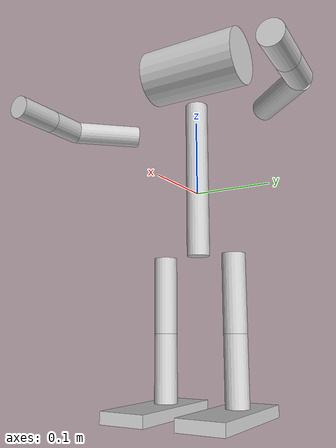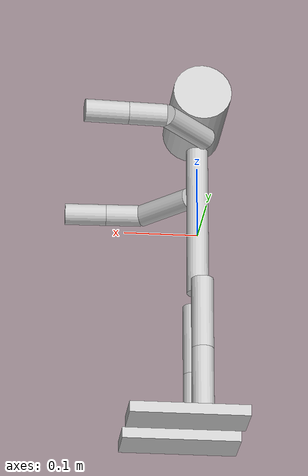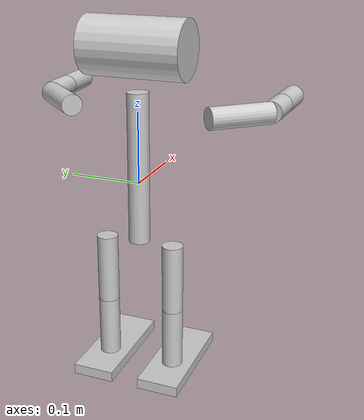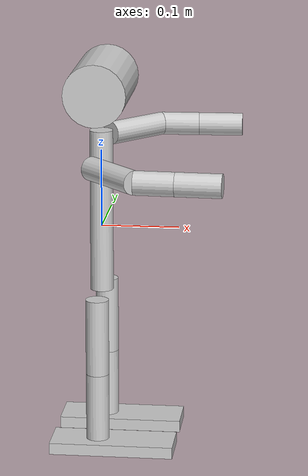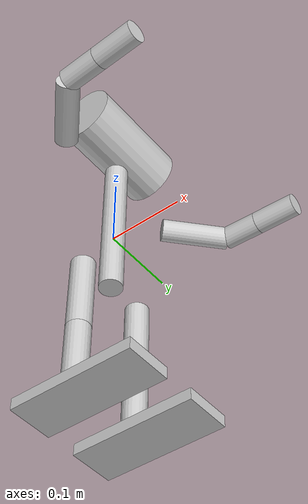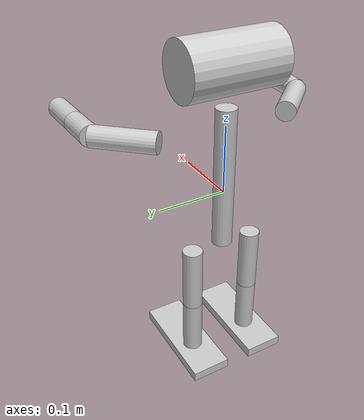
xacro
<?xml version="1.0" ?>
<robot name="NaoH25V32" xmlns:xacro="http://www.ros.org/wiki/xacro">
	<xacro:include filename="nao_visual_collisions.xacro"/>
	<xacro:include filename="nao_head.xacro"/>
	<xacro:include filename="nao_legs.xacro"/>
	<xacro:include filename="nao_torso.xacro"/>
	<xacro:include filename="nao_arms.xacro"/>
	<xacro:include filename="nao_sensors.xacro"/>
	<xacro:include filename="nao_fingers.xacro"/>
	<xacro:include filename="naoGazebo.xacro"/>
	<xacro:include filename="naoTransmission.xacro"/>
</robot>

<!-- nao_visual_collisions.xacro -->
<robot xmlns:xacro="http://www.ros.org/wiki/xacro">
	<xacro:property name="PI_2" value="1.57079632679"/>
	<xacro:property name="meshes_installed" value="false"/>
	<xacro:macro name="insert_visu_RFinger23_link">
		<xacro:unless value="${meshes_installed}"/>
		<xacro:if value="${meshes_installed}">
			<visual>
				<geometry>
					<mesh filename="package://nao_meshes/meshes/V32/RFinger23.dae" scale="0.1 0.1 0.1"/>
				</geometry>
				<origin rpy="0 0 0" xyz="0 0 0"/>
			</visual>
			<collision>
				<geometry>
					<mesh filename="package://nao_meshes/meshes/V32/RFinger23_0.10.stl" scale="0.1 0.1 0.1"/>
				</geometry>
				<origin rpy="0 0 0" xyz="0 0 0"/>
			</collision>
		</xacro:if>
	</xacro:macro>
	<xacro:macro name="insert_visu_LThigh">
		<xacro:unless value="${meshes_installed}">
			<visual>
				<geometry>
					<cylinder length="0.1" radius="0.015"/>
				</geometry>
				<origin rpy="0 0 0" xyz="0 0 -0.05"/>
				<material name="LightGrey"/>
			</visual>
			<collision>
				<geometry>
					<cylinder length="0.1" radius="0.015"/>
				</geometry>
				<origin rpy="0 0 0" xyz="0 0 -0.05"/>
			</collision>
		</xacro:unless>
		<xacro:if value="${meshes_installed}">
			<visual>
				<geometry>
					<mesh filename="package://nao_meshes/meshes/V32/LHipPitch.dae" scale="0.1 0.1 0.1"/>
				</geometry>
				<origin rpy="0 0 0" xyz="0 0 0"/>
			</visual>
			<collision>
				<geometry>
					<mesh filename="package://nao_meshes/meshes/V32/LHipPitch_0.10.stl" scale="0.1 0.1 0.1"/>
				</geometry>
				<origin rpy="0 0 0" xyz="0 0 0"/>
			</collision>
		</xacro:if>
	</xacro:macro>
	<xacro:macro name="insert_visu_RFinger13_link">
		<xacro:unless value="${meshes_installed}"/>
		<xacro:if value="${meshes_installed}">
			<visual>
				<geometry>
					<mesh filename="package://nao_meshes/meshes/V32/RFinger13.dae" scale="0.1 0.1 0.1"/>
				</geometry>
				<origin rpy="0 0 0" xyz="0 0 0"/>
			</visual>
			<collision>
				<geometry>
					<mesh filename="package://nao_meshes/meshes/V32/RFinger13_0.10.stl" scale="0.1 0.1 0.1"/>
				</geometry>
				<origin rpy="0 0 0" xyz="0 0 0"/>
			</collision>
		</xacro:if>
	</xacro:macro>
	<xacro:macro name="insert_visu_RThigh">
		<xacro:unless value="${meshes_installed}">
			<visual>
				<geometry>
					<cylinder length="0.1" radius="0.015"/>
				</geometry>
				<origin rpy="0 0 0" xyz="0 0 -0.05"/>
				<material name="LightGrey"/>
			</visual>
			<collision>
				<geometry>
					<cylinder length="0.1" radius="0.015"/>
				</geometry>
				<origin rpy="0 0 0" xyz="0 0 -0.05"/>
			</collision>
		</xacro:unless>
		<xacro:if value="${meshes_installed}">
			<visual>
				<geometry>
					<mesh filename="package://nao_meshes/meshes/V32/RHipPitch.dae" scale="0.1 0.1 0.1"/>
				</geometry>
				<origin rpy="0 0 0" xyz="0 0 0"/>
			</visual>
			<collision>
				<geometry>
					<mesh filename="package://nao_meshes/meshes/V32/RHipPitch_0.10.stl" scale="0.1 0.1 0.1"/>
				</geometry>
				<origin rpy="0 0 0" xyz="0 0 0"/>
			</collision>
		</xacro:if>
	</xacro:macro>
	<xacro:macro name="insert_visu_RFinger12_link">
		<xacro:unless value="${meshes_installed}"/>
		<xacro:if value="${meshes_installed}">
			<visual>
				<geometry>
					<mesh filename="package://nao_meshes/meshes/V32/RFinger12.dae" scale="0.1 0.1 0.1"/>
				</geometry>
				<origin rpy="0 0 0" xyz="0 0 0"/>
			</visual>
			<collision>
				<geometry>
					<mesh filename="package://nao_meshes/meshes/V32/RFinger12_0.10.stl" scale="0.1 0.1 0.1"/>
				</geometry>
				<origin rpy="0 0 0" xyz="0 0 0"/>
			</collision>
		</xacro:if>
	</xacro:macro>
	<xacro:macro name="insert_visu_LFinger21_link">
		<xacro:unless value="${meshes_installed}"/>
		<xacro:if value="${meshes_installed}">
			<visual>
				<geometry>
					<mesh filename="package://nao_meshes/meshes/V32/LFinger21.dae" scale="0.1 0.1 0.1"/>
				</geometry>
				<origin rpy="0 0 0" xyz="0 0 0"/>
			</visual>
			<collision>
				<geometry>
					<mesh filename="package://nao_meshes/meshes/V32/LFinger21_0.10.stl" scale="0.1 0.1 0.1"/>
				</geometry>
				<origin rpy="0 0 0" xyz="0 0 0"/>
			</collision>
		</xacro:if>
	</xacro:macro>
	<xacro:macro name="insert_visu_LFinger13_link">
		<xacro:unless value="${meshes_installed}"/>
		<xacro:if value="${meshes_installed}">
			<visual>
				<geometry>
					<mesh filename="package://nao_meshes/meshes/V32/LFinger13.dae" scale="0.1 0.1 0.1"/>
				</geometry>
				<origin rpy="0 0 0" xyz="0 0 0"/>
			</visual>
			<collision>
				<geometry>
					<mesh filename="package://nao_meshes/meshes/V32/LFinger13_0.10.stl" scale="0.1 0.1 0.1"/>
				</geometry>
				<origin rpy="0 0 0" xyz="0 0 0"/>
			</collision>
		</xacro:if>
	</xacro:macro>
	<xacro:macro name="insert_visu_LThumb1_link">
		<xacro:unless value="${meshes_installed}"/>
		<xacro:if value="${meshes_installed}">
			<visual>
				<geometry>
					<mesh filename="package://nao_meshes/meshes/V32/LThumb1.dae" scale="0.1 0.1 0.1"/>
				</geometry>
				<origin rpy="0 0 0" xyz="0 0 0"/>
			</visual>
			<collision>
				<geometry>
					<mesh filename="package://nao_meshes/meshes/V32/LThumb1_0.10.stl" scale="0.1 0.1 0.1"/>
				</geometry>
				<origin rpy="0 0 0" xyz="0 0 0"/>
			</collision>
		</xacro:if>
	</xacro:macro>
	<xacro:macro name="insert_visu_LFinger11_link">
		<xacro:unless value="${meshes_installed}"/>
		<xacro:if value="${meshes_installed}">
			<visual>
				<geometry>
					<mesh filename="package://nao_meshes/meshes/V32/LFinger11.dae" scale="0.1 0.1 0.1"/>
				</geometry>
				<origin rpy="0 0 0" xyz="0 0 0"/>
			</visual>
			<collision>
				<geometry>
					<mesh filename="package://nao_meshes/meshes/V32/LFinger11_0.10.stl" scale="0.1 0.1 0.1"/>
				</geometry>
				<origin rpy="0 0 0" xyz="0 0 0"/>
			</collision>
		</xacro:if>
	</xacro:macro>
	<xacro:macro name="insert_visu_RFinger22_link">
		<xacro:unless value="${meshes_installed}"/>
		<xacro:if value="${meshes_installed}">
			<visual>
				<geometry>
					<mesh filename="package://nao_meshes/meshes/V32/RFinger22.dae" scale="0.1 0.1 0.1"/>
				</geometry>
				<origin rpy="0 0 0" xyz="0 0 0"/>
			</visual>
			<collision>
				<geometry>
					<mesh filename="package://nao_meshes/meshes/V32/RFinger22_0.10.stl" scale="0.1 0.1 0.1"/>
				</geometry>
				<origin rpy="0 0 0" xyz="0 0 0"/>
			</collision>
		</xacro:if>
	</xacro:macro>
	<xacro:macro name="insert_visu_Head">
		<xacro:unless value="${meshes_installed}">
			<visual>
				<geometry>
					<cylinder length="0.14" radius="0.04"/>
				</geometry>
				<origin rpy="1.57079632679 0 0" xyz="0 0 0.058"/>
				<material name="LightGrey"/>
			</visual>
			<collision>
				<geometry>
					<cylinder length="0.14" radius="0.04"/>
				</geometry>
				<origin rpy="1.57079632679 0 0" xyz="0 0 0.058"/>
			</collision>
		</xacro:unless>
		<xacro:if value="${meshes_installed}">
			<visual>
				<geometry>
					<mesh filename="package://nao_meshes/meshes/V32/HeadPitch.dae" scale="0.1 0.1 0.1"/>
				</geometry>
				<origin rpy="0 0 0" xyz="0 0 0"/>
			</visual>
			<collision>
				<geometry>
					<mesh filename="package://nao_meshes/meshes/V32/HeadPitch_0.10.stl" scale="0.1 0.1 0.1"/>
				</geometry>
				<origin rpy="0 0 0" xyz="0 0 0"/>
			</collision>
		</xacro:if>
	</xacro:macro>
	<xacro:macro name="insert_visu_LFinger22_link">
		<xacro:unless value="${meshes_installed}"/>
		<xacro:if value="${meshes_installed}">
			<visual>
				<geometry>
					<mesh filename="package://nao_meshes/meshes/V32/LFinger22.dae" scale="0.1 0.1 0.1"/>
				</geometry>
				<origin rpy="0 0 0" xyz="0 0 0"/>
			</visual>
			<collision>
				<geometry>
					<mesh filename="package://nao_meshes/meshes/V32/LFinger22_0.10.stl" scale="0.1 0.1 0.1"/>
				</geometry>
				<origin rpy="0 0 0" xyz="0 0 0"/>
			</collision>
		</xacro:if>
	</xacro:macro>
	<xacro:macro name="insert_visu_RFinger21_link">
		<xacro:unless value="${meshes_installed}"/>
		<xacro:if value="${meshes_installed}">
			<visual>
				<geometry>
					<mesh filename="package://nao_meshes/meshes/V32/RFinger21.dae" scale="0.1 0.1 0.1"/>
				</geometry>
				<origin rpy="0 0 0" xyz="0 0 0"/>
			</visual>
			<collision>
				<geometry>
					<mesh filename="package://nao_meshes/meshes/V32/RFinger21_0.10.stl" scale="0.1 0.1 0.1"/>
				</geometry>
				<origin rpy="0 0 0" xyz="0 0 0"/>
			</collision>
		</xacro:if>
	</xacro:macro>
	<xacro:macro name="insert_visu_LBicep">
		<xacro:unless value="${meshes_installed}">
			<visual>
				<geometry>
					<cylinder length="0.09" radius="0.015"/>
				</geometry>
				<origin rpy="1.57079632679 0 1.57079632679" xyz="0.045 0 0"/>
				<material name="LightGrey"/>
			</visual>
			<collision>
				<geometry>
					<cylinder length="0.09" radius="0.015"/>
				</geometry>
				<origin rpy="1.57079632679 0 1.57079632679" xyz="0.045 0 0"/>
			</collision>
		</xacro:unless>
		<xacro:if value="${meshes_installed}">
			<visual>
				<geometry>
					<mesh filename="package://nao_meshes/meshes/V32/LShoulderRoll.dae" scale="0.1 0.1 0.1"/>
				</geometry>
				<origin rpy="0 0 0" xyz="0 0 0"/>
			</visual>
			<collision>
				<geometry>
					<mesh filename="package://nao_meshes/meshes/V32/LShoulderRoll_0.10.stl" scale="0.1 0.1 0.1"/>
				</geometry>
				<origin rpy="0 0 0" xyz="0 0 0"/>
			</collision>
		</xacro:if>
	</xacro:macro>
	<xacro:macro name="insert_visu_RThumb1_link">
		<xacro:unless value="${meshes_installed}"/>
		<xacro:if value="${meshes_installed}">
			<visual>
				<geometry>
					<mesh filename="package://nao_meshes/meshes/V32/RThumb1.dae" scale="0.1 0.1 0.1"/>
				</geometry>
				<origin rpy="0 0 0" xyz="0 0 0"/>
			</visual>
			<collision>
				<geometry>
					<mesh filename="package://nao_meshes/meshes/V32/RThumb1_0.10.stl" scale="0.1 0.1 0.1"/>
				</geometry>
				<origin rpy="0 0 0" xyz="0 0 0"/>
			</collision>
		</xacro:if>
	</xacro:macro>
	<xacro:macro name="insert_visu_RThumb2_link">
		<xacro:unless value="${meshes_installed}"/>
		<xacro:if value="${meshes_installed}">
			<visual>
				<geometry>
					<mesh filename="package://nao_meshes/meshes/V32/RThumb2.dae" scale="0.1 0.1 0.1"/>
				</geometry>
				<origin rpy="0 0 0" xyz="0 0 0"/>
			</visual>
			<collision>
				<geometry>
					<mesh filename="package://nao_meshes/meshes/V32/RThumb2_0.10.stl" scale="0.1 0.1 0.1"/>
				</geometry>
				<origin rpy="0 0 0" xyz="0 0 0"/>
			</collision>
		</xacro:if>
	</xacro:macro>
	<xacro:macro name="insert_visu_r_wrist">
		<xacro:unless value="${meshes_installed}">
			<visual>
				<geometry>
					<cylinder length="0.058" radius="0.015"/>
				</geometry>
				<origin rpy="1.57079632679 0 1.57079632679" xyz="0.029 0 0"/>
				<material name="LightGrey"/>
			</visual>
			<collision>
				<geometry>
					<cylinder length="0.058" radius="0.015"/>
				</geometry>
				<origin rpy="1.57079632679 0 1.57079632679" xyz="0.029 0 0"/>
			</collision>
		</xacro:unless>
		<xacro:if value="${meshes_installed}">
			<visual>
				<geometry>
					<mesh filename="package://nao_meshes/meshes/V32/RWristYaw.dae" scale="0.1 0.1 0.1"/>
				</geometry>
				<origin rpy="0 0 0" xyz="0 0 0"/>
			</visual>
			<collision>
				<geometry>
					<mesh filename="package://nao_meshes/meshes/V32/RWristYaw_0.10.stl" scale="0.1 0.1 0.1"/>
				</geometry>
				<origin rpy="0 0 0" xyz="0 0 0"/>
			</collision>
		</xacro:if>
	</xacro:macro>
	<xacro:macro name="insert_visu_LForeArm">
		<xacro:unless value="${meshes_installed}">
			<visual>
				<geometry>
					<cylinder length="0.05065" radius="0.015"/>
				</geometry>
				<origin rpy="1.57079632679 0 1.57079632679" xyz="0.025325 0 0"/>
				<material name="LightGrey"/>
			</visual>
			<collision>
				<geometry>
					<cylinder length="0.05065" radius="0.015"/>
				</geometry>
				<origin rpy="1.57079632679 0 1.57079632679" xyz="0.025325 0 0"/>
			</collision>
		</xacro:unless>
		<xacro:if value="${meshes_installed}">
			<visual>
				<geometry>
					<mesh filename="package://nao_meshes/meshes/V32/LElbowRoll.dae" scale="0.1 0.1 0.1"/>
				</geometry>
				<origin rpy="0 0 0" xyz="0 0 0"/>
			</visual>
			<collision>
				<geometry>
					<mesh filename="package://nao_meshes/meshes/V32/LElbowRoll_0.10.stl" scale="0.1 0.1 0.1"/>
				</geometry>
				<origin rpy="0 0 0" xyz="0 0 0"/>
			</collision>
		</xacro:if>
	</xacro:macro>
	<xacro:macro name="insert_visu_RHip">
		<xacro:unless value="${meshes_installed}"/>
		<xacro:if value="${meshes_installed}">
			<visual>
				<geometry>
					<mesh filename="package://nao_meshes/meshes/V32/RHipRoll.dae" scale="0.1 0.1 0.1"/>
				</geometry>
				<origin rpy="0 0 0" xyz="0 0 0"/>
			</visual>
			<collision>
				<geometry>
					<mesh filename="package://nao_meshes/meshes/V32/RHipRoll_0.10.stl" scale="0.1 0.1 0.1"/>
				</geometry>
				<origin rpy="0 0 0" xyz="0 0 0"/>
			</collision>
		</xacro:if>
	</xacro:macro>
	<xacro:macro name="insert_visu_LThumb2_link">
		<xacro:unless value="${meshes_installed}"/>
		<xacro:if value="${meshes_installed}">
			<visual>
				<geometry>
					<mesh filename="package://nao_meshes/meshes/V32/LThumb2.dae" scale="0.1 0.1 0.1"/>
				</geometry>
				<origin rpy="0 0 0" xyz="0 0 0"/>
			</visual>
			<collision>
				<geometry>
					<mesh filename="package://nao_meshes/meshes/V32/LThumb2_0.10.stl" scale="0.1 0.1 0.1"/>
				</geometry>
				<origin rpy="0 0 0" xyz="0 0 0"/>
			</collision>
		</xacro:if>
	</xacro:macro>
	<xacro:macro name="insert_visu_LFinger12_link">
		<xacro:unless value="${meshes_installed}"/>
		<xacro:if value="${meshes_installed}">
			<visual>
				<geometry>
					<mesh filename="package://nao_meshes/meshes/V32/LFinger12.dae" scale="0.1 0.1 0.1"/>
				</geometry>
				<origin rpy="0 0 0" xyz="0 0 0"/>
			</visual>
			<collision>
				<geometry>
					<mesh filename="package://nao_meshes/meshes/V32/LFinger12_0.10.stl" scale="0.1 0.1 0.1"/>
				</geometry>
				<origin rpy="0 0 0" xyz="0 0 0"/>
			</collision>
		</xacro:if>
	</xacro:macro>
	<xacro:macro name="insert_visu_RTibia">
		<xacro:unless value="${meshes_installed}">
			<visual>
				<geometry>
					<cylinder length="0.1" radius="0.015"/>
				</geometry>
				<origin rpy="0 0 0" xyz="0 0 -0.05"/>
				<material name="LightGrey"/>
			</visual>
			<collision>
				<geometry>
					<cylinder length="0.1" radius="0.015"/>
				</geometry>
				<origin rpy="0 0 0" xyz="0 0 -0.05"/>
			</collision>
		</xacro:unless>
		<xacro:if value="${meshes_installed}">
			<visual>
				<geometry>
					<mesh filename="package://nao_meshes/meshes/V32/RKneePitch.dae" scale="0.1 0.1 0.1"/>
				</geometry>
				<origin rpy="0 0 0" xyz="0 0 0"/>
			</visual>
			<collision>
				<geometry>
					<mesh filename="package://nao_meshes/meshes/V32/RKneePitch_0.10.stl" scale="0.1 0.1 0.1"/>
				</geometry>
				<origin rpy="0 0 0" xyz="0 0 0"/>
			</collision>
		</xacro:if>
	</xacro:macro>
	<xacro:macro name="insert_visu_RShoulder">
		<xacro:unless value="${meshes_installed}"/>
		<xacro:if value="${meshes_installed}">
			<visual>
				<geometry>
					<mesh filename="package://nao_meshes/meshes/V32/RShoulderPitch.dae" scale="0.1 0.1 0.1"/>
				</geometry>
				<origin rpy="0 0 0" xyz="0 0 0"/>
			</visual>
			<collision>
				<geometry>
					<mesh filename="package://nao_meshes/meshes/V32/RShoulderPitch_0.10.stl" scale="0.1 0.1 0.1"/>
				</geometry>
				<origin rpy="0 0 0" xyz="0 0 0"/>
			</collision>
		</xacro:if>
	</xacro:macro>
	<xacro:macro name="insert_visu_LHip">
		<xacro:unless value="${meshes_installed}"/>
		<xacro:if value="${meshes_installed}">
			<visual>
				<geometry>
					<mesh filename="package://nao_meshes/meshes/V32/LHipRoll.dae" scale="0.1 0.1 0.1"/>
				</geometry>
				<origin rpy="0 0 0" xyz="0 0 0"/>
			</visual>
			<collision>
				<geometry>
					<mesh filename="package://nao_meshes/meshes/V32/LHipRoll_0.10.stl" scale="0.1 0.1 0.1"/>
				</geometry>
				<origin rpy="0 0 0" xyz="0 0 0"/>
			</collision>
		</xacro:if>
	</xacro:macro>
	<xacro:macro name="insert_visu_l_wrist">
		<xacro:unless value="${meshes_installed}">
			<visual>
				<geometry>
					<cylinder length="0.058" radius="0.015"/>
				</geometry>
				<origin rpy="1.57079632679 0 1.57079632679" xyz="0.029 0 0"/>
				<material name="LightGrey"/>
			</visual>
			<collision>
				<geometry>
					<cylinder length="0.058" radius="0.015"/>
				</geometry>
				<origin rpy="1.57079632679 0 1.57079632679" xyz="0.029 0 0"/>
			</collision>
		</xacro:unless>
		<xacro:if value="${meshes_installed}">
			<visual>
				<geometry>
					<mesh filename="package://nao_meshes/meshes/V32/LWristYaw.dae" scale="0.1 0.1 0.1"/>
				</geometry>
				<origin rpy="0 0 0" xyz="0 0 0"/>
			</visual>
			<collision>
				<geometry>
					<mesh filename="package://nao_meshes/meshes/V32/LWristYaw_0.10.stl" scale="0.1 0.1 0.1"/>
				</geometry>
				<origin rpy="0 0 0" xyz="0 0 0"/>
			</collision>
		</xacro:if>
	</xacro:macro>
	<xacro:macro name="insert_visu_RBicep">
		<xacro:unless value="${meshes_installed}">
			<visual>
				<geometry>
					<cylinder length="0.09" radius="0.015"/>
				</geometry>
				<origin rpy="1.57079632679 0 1.57079632679" xyz="0.045 0 0"/>
				<material name="LightGrey"/>
			</visual>
			<collision>
				<geometry>
					<cylinder length="0.09" radius="0.015"/>
				</geometry>
				<origin rpy="1.57079632679 0 1.57079632679" xyz="0.045 0 0"/>
			</collision>
		</xacro:unless>
		<xacro:if value="${meshes_installed}">
			<visual>
				<geometry>
					<mesh filename="package://nao_meshes/meshes/V32/RShoulderRoll.dae" scale="0.1 0.1 0.1"/>
				</geometry>
				<origin rpy="0 0 0" xyz="0 0 0"/>
			</visual>
			<collision>
				<geometry>
					<mesh filename="package://nao_meshes/meshes/V32/RShoulderRoll_0.10.stl" scale="0.1 0.1 0.1"/>
				</geometry>
				<origin rpy="0 0 0" xyz="0 0 0"/>
			</collision>
		</xacro:if>
	</xacro:macro>
	<xacro:macro name="insert_visu_RFinger11_link">
		<xacro:unless value="${meshes_installed}"/>
		<xacro:if value="${meshes_installed}">
			<visual>
				<geometry>
					<mesh filename="package://nao_meshes/meshes/V32/RFinger11.dae" scale="0.1 0.1 0.1"/>
				</geometry>
				<origin rpy="0 0 0" xyz="0 0 0"/>
			</visual>
			<collision>
				<geometry>
					<mesh filename="package://nao_meshes/meshes/V32/RFinger11_0.10.stl" scale="0.1 0.1 0.1"/>
				</geometry>
				<origin rpy="0 0 0" xyz="0 0 0"/>
			</collision>
		</xacro:if>
	</xacro:macro>
	<xacro:macro name="insert_visu_LFinger23_link">
		<xacro:unless value="${meshes_installed}"/>
		<xacro:if value="${meshes_installed}">
			<visual>
				<geometry>
					<mesh filename="package://nao_meshes/meshes/V32/LFinger23.dae" scale="0.1 0.1 0.1"/>
				</geometry>
				<origin rpy="0 0 0" xyz="0 0 0"/>
			</visual>
			<collision>
				<geometry>
					<mesh filename="package://nao_meshes/meshes/V32/LFinger23_0.10.stl" scale="0.1 0.1 0.1"/>
				</geometry>
				<origin rpy="0 0 0" xyz="0 0 0"/>
			</collision>
		</xacro:if>
	</xacro:macro>
	<xacro:macro name="insert_visu_LTibia">
		<xacro:unless value="${meshes_installed}">
			<visual>
				<geometry>
					<cylinder length="0.1" radius="0.015"/>
				</geometry>
				<origin rpy="0 0 0" xyz="0 0 -0.05"/>
				<material name="LightGrey"/>
			</visual>
			<collision>
				<geometry>
					<cylinder length="0.1" radius="0.015"/>
				</geometry>
				<origin rpy="0 0 0" xyz="0 0 -0.05"/>
			</collision>
		</xacro:unless>
		<xacro:if value="${meshes_installed}">
			<visual>
				<geometry>
					<mesh filename="package://nao_meshes/meshes/V32/LKneePitch.dae" scale="0.1 0.1 0.1"/>
				</geometry>
				<origin rpy="0 0 0" xyz="0 0 0"/>
			</visual>
			<collision>
				<geometry>
					<mesh filename="package://nao_meshes/meshes/V32/LKneePitch_0.10.stl" scale="0.1 0.1 0.1"/>
				</geometry>
				<origin rpy="0 0 0" xyz="0 0 0"/>
			</collision>
		</xacro:if>
	</xacro:macro>
	<xacro:macro name="insert_visu_Neck">
		<xacro:unless value="${meshes_installed}"/>
		<xacro:if value="${meshes_installed}">
			<visual>
				<geometry>
					<mesh filename="package://nao_meshes/meshes/V32/HeadYaw.dae" scale="0.1 0.1 0.1"/>
				</geometry>
				<origin rpy="0 0 0" xyz="0 0 0"/>
			</visual>
			<collision>
				<geometry>
					<mesh filename="package://nao_meshes/meshes/V32/HeadYaw_0.10.stl" scale="0.1 0.1 0.1"/>
				</geometry>
				<origin rpy="0 0 0" xyz="0 0 0"/>
			</collision>
		</xacro:if>
	</xacro:macro>
	<xacro:macro name="insert_visu_LAnklePitch">
		<xacro:unless value="${meshes_installed}"/>
		<xacro:if value="${meshes_installed}">
			<visual>
				<geometry>
					<mesh filename="package://nao_meshes/meshes/V32/LAnklePitch.dae" scale="0.1 0.1 0.1"/>
				</geometry>
				<origin rpy="0 0 0" xyz="0 0 0"/>
			</visual>
			<collision>
				<geometry>
					<mesh filename="package://nao_meshes/meshes/V32/LAnklePitch_0.10.stl" scale="0.1 0.1 0.1"/>
				</geometry>
				<origin rpy="0 0 0" xyz="0 0 0"/>
			</collision>
		</xacro:if>
	</xacro:macro>
	<xacro:macro name="insert_visu_RPelvis">
		<xacro:unless value="${meshes_installed}"/>
		<xacro:if value="${meshes_installed}">
			<visual>
				<geometry>
					<mesh filename="package://nao_meshes/meshes/V32/RHipYawPitch.dae" scale="0.1 0.1 0.1"/>
				</geometry>
				<origin rpy="0 0 0" xyz="0 0 0"/>
			</visual>
			<collision>
				<geometry>
					<mesh filename="package://nao_meshes/meshes/V32/RHipYawPitch_0.10.stl" scale="0.1 0.1 0.1"/>
				</geometry>
				<origin rpy="0 0 0" xyz="0 0 0"/>
			</collision>
		</xacro:if>
	</xacro:macro>
	<xacro:macro name="insert_visu_RAnklePitch">
		<xacro:unless value="${meshes_installed}"/>
		<xacro:if value="${meshes_installed}">
			<visual>
				<geometry>
					<mesh filename="package://nao_meshes/meshes/V32/RAnklePitch.dae" scale="0.1 0.1 0.1"/>
				</geometry>
				<origin rpy="0 0 0" xyz="0 0 0"/>
			</visual>
			<collision>
				<geometry>
					<mesh filename="package://nao_meshes/meshes/V32/RAnklePitch_0.10.stl" scale="0.1 0.1 0.1"/>
				</geometry>
				<origin rpy="0 0 0" xyz="0 0 0"/>
			</collision>
		</xacro:if>
	</xacro:macro>
	<xacro:macro name="insert_visu_torso">
		<xacro:unless value="${meshes_installed}">
			<visual>
				<geometry>
					<cylinder length="0.2115" radius="0.015"/>
				</geometry>
				<origin rpy="0 0 0" xyz="0 0 0.02075"/>
				<material name="LightGrey"/>
			</visual>
			<collision>
				<geometry>
					<cylinder length="0.2115" radius="0.015"/>
				</geometry>
				<origin rpy="0 0 0" xyz="0 0 0.02075"/>
			</collision>
		</xacro:unless>
		<xacro:if value="${meshes_installed}">
			<visual>
				<geometry>
					<mesh filename="package://nao_meshes/meshes/V32/Torso.dae" scale="0.1 0.1 0.1"/>
				</geometry>
				<origin rpy="0 0 0" xyz="0 0 0"/>
			</visual>
			<collision>
				<geometry>
					<mesh filename="package://nao_meshes/meshes/V32/Torso_0.10.stl" scale="0.1 0.1 0.1"/>
				</geometry>
				<origin rpy="0 0 0" xyz="0 0 0"/>
			</collision>
		</xacro:if>
	</xacro:macro>
	<xacro:macro name="insert_visu_r_ankle">
		<xacro:unless value="${meshes_installed}">
			<visual>
				<geometry>
					<box size="0.16 0.06 0.015"/>
				</geometry>
				<origin rpy="0 0 0" xyz="0.02 0 0.0075"/>
				<material name="LightGrey"/>
			</visual>
			<collision>
				<geometry>
					<box size="0.16 0.06 0.015"/>
				</geometry>
				<origin rpy="0 0 0" xyz="0.02 0 0.0075"/>
			</collision>
		</xacro:unless>
		<xacro:if value="${meshes_installed}">
			<visual>
				<geometry>
					<mesh filename="package://nao_meshes/meshes/V32/RAnkleRoll.dae" scale="0.1 0.1 0.1"/>
				</geometry>
				<origin rpy="0 0 0" xyz="0 0 0"/>
			</visual>
			<collision>
				<geometry>
					<mesh filename="package://nao_meshes/meshes/V32/RAnkleRoll_0.10.stl" scale="0.1 0.1 0.1"/>
				</geometry>
				<origin rpy="0 0 0" xyz="0 0 0"/>
			</collision>
		</xacro:if>
	</xacro:macro>
	<xacro:macro name="insert_visu_l_ankle">
		<xacro:unless value="${meshes_installed}">
			<visual>
				<geometry>
					<box size="0.16 0.06 0.015"/>
				</geometry>
				<origin rpy="0 0 0" xyz="0.02 0 0.0075"/>
				<material name="LightGrey"/>
			</visual>
			<collision>
				<geometry>
					<box size="0.16 0.06 0.015"/>
				</geometry>
				<origin rpy="0 0 0" xyz="0.02 0 0.0075"/>
			</collision>
		</xacro:unless>
		<xacro:if value="${meshes_installed}">
			<visual>
				<geometry>
					<mesh filename="package://nao_meshes/meshes/V32/LAnkleRoll.dae" scale="0.1 0.1 0.1"/>
				</geometry>
				<origin rpy="0 0 0" xyz="0 0 0"/>
			</visual>
			<collision>
				<geometry>
					<mesh filename="package://nao_meshes/meshes/V32/LAnkleRoll_0.10.stl" scale="0.1 0.1 0.1"/>
				</geometry>
				<origin rpy="0 0 0" xyz="0 0 0"/>
			</collision>
		</xacro:if>
	</xacro:macro>
	<xacro:macro name="insert_visu_RForeArm">
		<xacro:unless value="${meshes_installed}">
			<visual>
				<geometry>
					<cylinder length="0.05065" radius="0.015"/>
				</geometry>
				<origin rpy="1.57079632679 0 1.57079632679" xyz="0.025325 0 0"/>
				<material name="LightGrey"/>
			</visual>
			<collision>
				<geometry>
					<cylinder length="0.05065" radius="0.015"/>
				</geometry>
				<origin rpy="1.57079632679 0 1.57079632679" xyz="0.025325 0 0"/>
			</collision>
		</xacro:unless>
		<xacro:if value="${meshes_installed}">
			<visual>
				<geometry>
					<mesh filename="package://nao_meshes/meshes/V32/RElbowRoll.dae" scale="0.1 0.1 0.1"/>
				</geometry>
				<origin rpy="0 0 0" xyz="0 0 0"/>
			</visual>
			<collision>
				<geometry>
					<mesh filename="package://nao_meshes/meshes/V32/RElbowRoll_0.10.stl" scale="0.1 0.1 0.1"/>
				</geometry>
				<origin rpy="0 0 0" xyz="0 0 0"/>
			</collision>
		</xacro:if>
	</xacro:macro>
	<xacro:macro name="insert_visu_LShoulder">
		<xacro:unless value="${meshes_installed}"/>
		<xacro:if value="${meshes_installed}">
			<visual>
				<geometry>
					<mesh filename="package://nao_meshes/meshes/V32/LShoulderPitch.dae" scale="0.1 0.1 0.1"/>
				</geometry>
				<origin rpy="0 0 0" xyz="0 0 0"/>
			</visual>
			<collision>
				<geometry>
					<mesh filename="package://nao_meshes/meshes/V32/LShoulderPitch_0.10.stl" scale="0.1 0.1 0.1"/>
				</geometry>
				<origin rpy="0 0 0" xyz="0 0 0"/>
			</collision>
		</xacro:if>
	</xacro:macro>
	<xacro:macro name="insert_visu_LPelvis">
		<xacro:unless value="${meshes_installed}"/>
		<xacro:if value="${meshes_installed}">
			<visual>
				<geometry>
					<mesh filename="package://nao_meshes/meshes/V32/LHipYawPitch.dae" scale="0.1 0.1 0.1"/>
				</geometry>
				<origin rpy="0 0 0" xyz="0 0 0"/>
			</visual>
			<collision>
				<geometry>
					<mesh filename="package://nao_meshes/meshes/V32/LHipYawPitch_0.10.stl" scale="0.1 0.1 0.1"/>
				</geometry>
				<origin rpy="0 0 0" xyz="0 0 0"/>
			</collision>
		</xacro:if>
	</xacro:macro>
</robot>

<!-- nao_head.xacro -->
<robot xmlns:xacro="http://www.ros.org/wiki/xacro">
	<joint name="HeadYaw" type="revolute">
		<parent link="torso"/>
		<child link="Neck"/>
		<origin rpy="0 0 0" xyz="0 0 0.1265"/>
		<axis xyz="0 0 1.0"/>
		<limit effort="1.547" lower="-2.08567" upper="2.08567" velocity="8.26797"/>
	</joint>
	<link name="Neck">
		<inertial>
			<mass value="0.05959"/>
			<inertia ixx="2.27831e-05" ixy="0" ixz="-2.84825e-08" iyy="2.37937e-05" iyz="-1.0416e-07" izz="5.49457e-06"/>
			<origin rpy="0 0 0" xyz="-3e-05 0 -0.02573"/>
		</inertial>
		<xacro:insert_visu_Neck/>
	</link>
	<joint name="HeadPitch" type="revolute">
		<parent link="Neck"/>
		<child link="Head"/>
		<origin rpy="0 0 0" xyz="0 0 0"/>
		<axis xyz="0 1.0 0"/>
		<limit effort="1.532" lower="-0.671952" upper="0.514872" velocity="7.19407"/>
	</joint>
	<link name="Head">
		<inertial>
			<mass value="0.47672"/>
			<inertia ixx="0.0036122" ixy="1.42859e-05" ixz="0.000289597" iyy="0.00342929" iyz="-2.22459e-05" izz="0.00156014"/>
			<origin rpy="0 0 0" xyz="0.00383 0 0.05156"/>
		</inertial>
		<xacro:insert_visu_Head/>
	</link>
	<joint name="gaze_joint" type="fixed">
		<parent link="Head"/>
		<child link="gaze"/>
		<origin rpy="0 0 0" xyz="0.05871 0 0.06364"/>
	</joint>
	<link name="gaze"/>
</robot>

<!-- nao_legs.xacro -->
<robot xmlns:xacro="http://www.ros.org/wiki/xacro">
	<joint name="LHipYawPitch" type="revolute">
		<parent link="torso"/>
		<child link="LPelvis"/>
		<origin rpy="0 0 0" xyz="0 0.05 -0.085"/>
		<axis xyz="0 0.707106 -0.707106"/>
		<limit effort="3.348" lower="-1.14529" upper="0.740718" velocity="4.16174"/>
	</joint>
	<link name="LPelvis">
		<inertial>
			<mass value="0.07244"/>
			<inertia ixx="2.74339e-05" ixy="1.27703e-06" ixz="-1.83038e-06" iyy="4.99292e-05" iyz="4.57891e-06" izz="5.3498e-05"/>
			<origin rpy="0 0 0" xyz="-0.00717 -0.01187 0.02705"/>
		</inertial>
		<xacro:insert_visu_LPelvis/>
	</link>
	<joint name="LHipRoll" type="revolute">
		<parent link="LPelvis"/>
		<child link="LHip"/>
		<origin rpy="0 0 0" xyz="0 0 0"/>
		<axis xyz="1.0 0 0"/>
		<limit effort="3.348" lower="-0.379435" upper="0.79046" velocity="4.16174"/>
	</joint>
	<link name="LHip">
		<inertial>
			<mass value="0.1353"/>
			<inertia ixx="2.4849e-05" ixy="-5.97198e-07" ixz="5.28803e-06" iyy="6.16256e-05" iyz="-1.85886e-07" izz="0.000255291"/>
			<origin rpy="0 0 0" xyz="-0.01649 0.00029 -0.00475"/>
		</inertial>
		<xacro:insert_visu_LHip/>
	</link>
	<joint name="LHipPitch" type="revolute">
		<parent link="LHip"/>
		<child link="LThigh"/>
		<origin rpy="0 0 0" xyz="0 0 0"/>
		<axis xyz="0 1.0 0"/>
		<limit effort="3.023" lower="-1.53589" upper="0.48398" velocity="6.40239"/>
	</joint>
	<link name="LThigh">
		<inertial>
			<mass value="0.39798"/>
			<inertia ixx="0.000509482" ixy="1.48043e-06" ixz="5.4425e-05" iyy="0.000469814" iyz="-1.13419e-05" izz="0.000302638"/>
			<origin rpy="0 0 0" xyz="0.00131 0.00201 -0.05386"/>
		</inertial>
		<xacro:insert_visu_LThigh/>
	</link>
	<joint name="LKneePitch" type="revolute">
		<parent link="LThigh"/>
		<child link="LTibia"/>
		<origin rpy="0 0 0" xyz="0 0 -0.1"/>
		<axis xyz="0 1.0 0"/>
		<limit effort="3.023" lower="-0.0923279" upper="2.11255" velocity="6.40239"/>
	</joint>
	<link name="LTibia">
		<inertial>
			<mass value="0.29714"/>
			<inertia ixx="0.000468213" ixy="3.24443e-06" ixz="-2.82799e-05" iyy="0.000411872" iyz="5.21684e-06" izz="0.000185588"/>
			<origin rpy="0 0 0" xyz="0.00471 0.0021 -0.04891"/>
		</inertial>
		<xacro:insert_visu_LTibia/>
	</link>
	<joint name="LAnklePitch" type="revolute">
		<parent link="LTibia"/>
		<child link="LAnklePitch"/>
		<origin rpy="0 0 0" xyz="0 0 -0.1029"/>
		<axis xyz="0 1.0 0"/>
		<limit effort="3.023" lower="-1.18944" upper="0.922581" velocity="6.40239"/>
	</joint>
	<link name="LAnklePitch">
		<inertial>
			<mass value="0.13892"/>
			<inertia ixx="3.31602e-05" ixy="5.81459e-09" ixz="3.47177e-06" iyy="6.6181e-05" iyz="2.54907e-07" izz="5.32289e-05"/>
			<origin rpy="0 0 0" xyz="0.00142 0.00028 0.00638"/>
		</inertial>
		<xacro:insert_visu_LAnklePitch/>
	</link>
	<joint name="LAnkleRoll" type="revolute">
		<parent link="LAnklePitch"/>
		<child link="l_ankle"/>
		<origin rpy="0 0 0" xyz="0 0 0"/>
		<axis xyz="1.0 0 0"/>
		<limit effort="3.348" lower="-0.397761" upper="0.768992" velocity="4.16174"/>
	</joint>
	<link name="l_ankle">
		<inertial>
			<mass value="0.16304"/>
			<inertia ixx="9.80337e-05" ixy="7.46444e-06" ixz="7.11645e-06" iyy="0.000374354" iyz="1.43763e-06" izz="0.000423717"/>
			<origin rpy="0 0 0" xyz="0.02489 0.0033 -0.03208"/>
		</inertial>
		<xacro:insert_visu_l_ankle/>
	</link>
	<joint name="LLeg_effector_fixedjoint" type="fixed">
		<parent link="l_ankle"/>
		<child link="l_sole"/>
		<origin rpy="0 0 0" xyz="0 0 -0.04511"/>
		<axis xyz="0 0 0"/>
	</joint>
	<link name="l_sole"/>
	<joint name="RHipYawPitch" type="revolute">
		<parent link="torso"/>
		<child link="RPelvis"/>
		<origin rpy="0 0 0" xyz="0 -0.05 -0.085"/>
		<axis xyz="0 0.707106 0.707106"/>
		<limit effort="3.348" lower="-1.14529" upper="0.740718" velocity="4.16174"/>
		<mimic joint="LHipYawPitch" multiplier="1.0" offset="0"/>
	</joint>
	<link name="RPelvis">
		<inertial>
			<mass value="0.07244"/>
			<inertia ixx="2.74339e-05" ixy="-1.27703e-06" ixz="-1.83038e-06" iyy="4.99292e-05" iyz="-4.57891e-06" izz="5.3498e-05"/>
			<origin rpy="0 0 0" xyz="-0.00717 0.01187 0.02705"/>
		</inertial>
		<xacro:insert_visu_RPelvis/>
	</link>
	<joint name="RHipRoll" type="revolute">
		<parent link="RPelvis"/>
		<child link="RHip"/>
		<origin rpy="0 0 0" xyz="0 0 0"/>
		<axis xyz="1.0 0 0"/>
		<limit effort="3.348" lower="-0.79046" upper="0.379435" velocity="4.16174"/>
	</joint>
	<link name="RHip">
		<inertial>
			<mass value="0.1353"/>
			<inertia ixx="2.4849e-05" ixy="5.97198e-07" ixz="5.28803e-06" iyy="6.16256e-05" iyz="1.85886e-07" izz="0.000255291"/>
			<origin rpy="0 0 0" xyz="-0.01649 -0.00029 -0.00475"/>
		</inertial>
		<xacro:insert_visu_RHip/>
	</link>
	<joint name="RHipPitch" type="revolute">
		<parent link="RHip"/>
		<child link="RThigh"/>
		<origin rpy="0 0 0" xyz="0 0 0"/>
		<axis xyz="0 1.0 0"/>
		<limit effort="3.0226" lower="-1.53589" upper="0.48398" velocity="6.40239"/>
	</joint>
	<link name="RThigh">
		<inertial>
			<mass value="0.39798"/>
			<inertia ixx="0.000509482" ixy="-1.48043e-06" ixz="5.4425e-05" iyy="0.000469814" iyz="1.13419e-05" izz="0.000302638"/>
			<origin rpy="0 0 0" xyz="0.00131 -0.00201 -0.05386"/>
		</inertial>
		<xacro:insert_visu_RThigh/>
	</link>
	<joint name="RKneePitch" type="revolute">
		<parent link="RThigh"/>
		<child link="RTibia"/>
		<origin rpy="0 0 0" xyz="0 0 -0.1"/>
		<axis xyz="0 1.0 0"/>
		<limit effort="3.0226" lower="-0.0923279" upper="2.11255" velocity="6.40239"/>
	</joint>
	<link name="RTibia">
		<inertial>
			<mass value="0.29714"/>
			<inertia ixx="0.000468213" ixy="-3.24443e-06" ixz="-2.82799e-05" iyy="0.000411872" iyz="-5.21684e-06" izz="0.000185588"/>
			<origin rpy="0 0 0" xyz="0.00471 -0.0021 -0.04891"/>
		</inertial>
		<xacro:insert_visu_RTibia/>
	</link>
	<joint name="RAnklePitch" type="revolute">
		<parent link="RTibia"/>
		<child link="RAnklePitch"/>
		<origin rpy="0 0 0" xyz="0 0 -0.1029"/>
		<axis xyz="0 1.0 0"/>
		<limit effort="3.0226" lower="-1.1863" upper="0.932006" velocity="6.40239"/>
	</joint>
	<link name="RAnklePitch">
		<inertial>
			<mass value="0.13892"/>
			<inertia ixx="3.31602e-05" ixy="-5.81459e-09" ixz="3.47177e-06" iyy="6.6181e-05" iyz="-2.54907e-07" izz="5.32289e-05"/>
			<origin rpy="0 0 0" xyz="0.00142 -0.00028 0.00638"/>
		</inertial>
		<xacro:insert_visu_RAnklePitch/>
	</link>
	<joint name="RAnkleRoll" type="revolute">
		<parent link="RAnklePitch"/>
		<child link="r_ankle"/>
		<origin rpy="0 0 0" xyz="0 0 0"/>
		<axis xyz="1.0 0 0"/>
		<limit effort="3.348" lower="-0.768992" upper="0.397761" velocity="4.16174"/>
	</joint>
	<link name="r_ankle">
		<inertial>
			<mass value="0.16304"/>
			<inertia ixx="9.80337e-05" ixy="-7.46444e-06" ixz="-0.000116453" iyy="0.000374354" iyz="-1.43763e-06" izz="0.000423717"/>
			<origin rpy="0 0 0" xyz="0.02489 -0.0033 -0.03208"/>
		</inertial>
		<xacro:insert_visu_r_ankle/>
	</link>
	<joint name="RLeg_effector_fixedjoint" type="fixed">
		<parent link="r_ankle"/>
		<child link="r_sole"/>
		<origin rpy="0 0 0" xyz="0 0 -0.04511"/>
		<axis xyz="0 0 0"/>
	</joint>
	<link name="r_sole"/>
</robot>

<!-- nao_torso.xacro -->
<robot xmlns:xacro="http://www.ros.org/wiki/xacro">
	<link name="base_link"/>
	<joint name="base_link_fixedjoint" type="fixed">
		<parent link="base_link"/>
		<child link="torso"/>
		<origin rpy="0 0 0" xyz="0 0 0"/>
		<axis xyz="0 0 0"/>
	</joint>
	<link name="torso">
		<inertial>
			<mass value="1.02628"/>
			<inertia ixx="0.00304582" ixy="1.42859e-05" ixz="-1.27716e-05" iyy="0.00284625" iyz="-2.22459e-05" izz="0.00154349"/>
			<origin rpy="0 0 0" xyz="-0.0048 0 0.04227"/>
		</inertial>
		<xacro:insert_visu_torso/>
	</link>
</robot>

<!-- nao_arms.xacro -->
<robot xmlns:xacro="http://www.ros.org/wiki/xacro">
	<joint name="LShoulderPitch" type="revolute">
		<parent link="torso"/>
		<child link="LShoulder"/>
		<origin rpy="0 0 0" xyz="0 0.098 0.1"/>
		<axis xyz="0 1.0 0"/>
		<limit effort="1.329" lower="-2.08567" upper="2.08567" velocity="8.26797"/>
	</joint>
	<link name="LShoulder">
		<inertial>
			<mass value="0.06984"/>
			<inertia ixx="2.71212e-05" ixy="1.092e-06" ixz="-6.48989e-09" iyy="1.38254e-05" iyz="-3.76769e-07" izz="2.90286e-05"/>
			<origin rpy="0 0 0" xyz="-0.00178 -0.02507 0.00019"/>
		</inertial>
		<xacro:insert_visu_LShoulder/>
	</link>
	<joint name="LShoulderRoll" type="revolute">
		<parent link="LShoulder"/>
		<child link="LBicep"/>
		<origin rpy="0 0 0" xyz="0 0 0"/>
		<axis xyz="0 0 1.0"/>
		<limit effort="1.7835" lower="0.00872665" upper="1.64934" velocity="7.19407"/>
	</joint>
	<link name="LBicep">
		<inertial>
			<mass value="0.12166"/>
			<inertia ixx="5.58921e-05" ixy="7.81779e-06" ixz="7.53876e-06" iyy="0.000148637" iyz="-1.97852e-06" izz="0.000130405"/>
			<origin rpy="0 0 0" xyz="0.02067 0.00388 0.00362"/>
		</inertial>
		<xacro:insert_visu_LBicep/>
	</link>
	<joint name="LElbowYaw" type="revolute">
		<parent link="LBicep"/>
		<child link="LElbow"/>
		<origin rpy="0 0 0" xyz="0.09 0 0"/>
		<axis xyz="1.0 0 0"/>
		<limit effort="1.547" lower="-2.08567" upper="2.08567" velocity="8.26797"/>
	</joint>
	<link name="LElbow">
		<inertial>
			<mass value="0.05959"/>
			<inertia ixx="5.49223e-06" ixy="-7.08749e-09" ixz="3.7436e-07" iyy="2.2795e-05" iyz="5.70918e-09" izz="2.37796e-05"/>
			<origin rpy="0 0 0" xyz="-0.02573 -1e-05 -0.0002"/>
		</inertial>
	</link>
	<joint name="LElbowRoll" type="revolute">
		<parent link="LElbow"/>
		<child link="LForeArm"/>
		<origin rpy="0 0 0" xyz="0 0 0"/>
		<axis xyz="0 0 1.0"/>
		<limit effort="1.532" lower="-1.56207" upper="-0.00872665" velocity="7.19407"/>
	</joint>
	<link name="LForeArm">
		<inertial>
			<mass value="0.0377"/>
			<inertia ixx="1.2127e-05" ixy="9.08795e-07" ixz="3.9219e-07" iyy="1.61446e-05" iyz="7.966e-08" izz="1.52257e-05"/>
			<origin rpy="0 0 0" xyz="0.0194 0.00304 0.0025"/>
		</inertial>
		<xacro:insert_visu_LForeArm/>
	</link>
	<joint name="LWristYaw" type="revolute">
		<parent link="LForeArm"/>
		<child link="l_wrist"/>
		<origin rpy="0 0 0" xyz="0.05055 0 0"/>
		<axis xyz="1.0 0 0"/>
		<limit effort="0.3891" lower="-1.82387" upper="1.82387" velocity="5.03144"/>
	</joint>
	<link name="l_wrist">
		<inertial>
			<mass value="0.14314"/>
			<inertia ixx="5.48391e-05" ixy="4.21084e-06" ixz="-1.25566e-06" iyy="0.000120895" iyz="7.74367e-07" izz="0.00011473"/>
			<origin rpy="0 0 0" xyz="0.03241 0.00268 -0.00272"/>
		</inertial>
		<xacro:insert_visu_l_wrist/>
	</link>
	<joint name="LHand" type="revolute">
		<parent link="l_wrist"/>
		<child link="l_gripper"/>
		<origin rpy="0 0 0" xyz="0.058 0 -0.0159"/>
		<axis xyz="1.0 0 0"/>
		<limit effort="0.292" lower="0" upper="1.0" velocity="3.71"/>
	</joint>
	<link name="l_gripper">
		<inertial>
			<mass value="2e-06"/>
			<inertia ixx="1.1e-09" ixy="0" ixz="0" iyy="1.1e-09" iyz="0" izz="1.1e-09"/>
		</inertial>
	</link>
	<joint name="RShoulderPitch" type="revolute">
		<parent link="torso"/>
		<child link="RShoulder"/>
		<origin rpy="0 0 0" xyz="0 -0.098 0.1"/>
		<axis xyz="0 1.0 0"/>
		<limit effort="1.329" lower="-2.08567" upper="2.08567" velocity="8.26797"/>
	</joint>
	<link name="RShoulder">
		<inertial>
			<mass value="0.06984"/>
			<inertia ixx="2.71212e-05" ixy="-1.092e-06" ixz="-6.48989e-09" iyy="1.38254e-05" iyz="3.76769e-07" izz="2.90286e-05"/>
			<origin rpy="0 0 0" xyz="-0.00178 0.02507 0.00019"/>
		</inertial>
		<xacro:insert_visu_RShoulder/>
	</link>
	<joint name="RShoulderRoll" type="revolute">
		<parent link="RShoulder"/>
		<child link="RBicep"/>
		<origin rpy="0 0 0" xyz="0 0 0"/>
		<axis xyz="0 0 1.0"/>
		<limit effort="1.783" lower="-1.64934" upper="-0.00872665" velocity="7.19407"/>
	</joint>
	<link name="RBicep">
		<inertial>
			<mass value="0.12166"/>
			<inertia ixx="5.58921e-05" ixy="-7.81779e-06" ixz="-6.54177e-06" iyy="0.000148637" iyz="1.97852e-06" izz="0.000130405"/>
			<origin rpy="0 0 0" xyz="0.02067 -0.00388 0.00362"/>
		</inertial>
		<xacro:insert_visu_RBicep/>
	</link>
	<joint name="RElbowYaw" type="revolute">
		<parent link="RBicep"/>
		<child link="RElbow"/>
		<origin rpy="0 0 0" xyz="0.09 0 0"/>
		<axis xyz="1.0 0 0"/>
		<limit effort="1.547" lower="-2.08567" upper="2.08567" velocity="8.26797"/>
	</joint>
	<link name="RElbow">
		<inertial>
			<mass value="0.05959"/>
			<inertia ixx="5.49223e-06" ixy="7.08749e-09" ixz="3.7436e-07" iyy="2.2795e-05" iyz="-5.70918e-09" izz="2.37796e-05"/>
			<origin rpy="0 0 0" xyz="-0.02573 1e-05 -0.0002"/>
		</inertial>
	</link>
	<joint name="RElbowRoll" type="revolute">
		<parent link="RElbow"/>
		<child link="RForeArm"/>
		<origin rpy="0 0 0" xyz="0 0 0"/>
		<axis xyz="0 0 1.0"/>
		<limit effort="1.532" lower="0.00872665" upper="1.56207" velocity="7.19407"/>
	</joint>
	<link name="RForeArm">
		<inertial>
			<mass value="0.0377"/>
			<inertia ixx="1.2127e-05" ixy="-9.08795e-07" ixz="3.9219e-07" iyy="1.61446e-05" iyz="-7.966e-08" izz="1.52257e-05"/>
			<origin rpy="0 0 0" xyz="0.0194 -0.00304 0.0025"/>
		</inertial>
		<xacro:insert_visu_RForeArm/>
	</link>
	<joint name="RWristYaw" type="revolute">
		<parent link="RForeArm"/>
		<child link="r_wrist"/>
		<origin rpy="0 0 0" xyz="0.05055 0 0"/>
		<axis xyz="1.0 0 0"/>
		<limit effort="0.3891" lower="-1.82387" upper="1.82387" velocity="5.03144"/>
	</joint>
	<link name="r_wrist">
		<inertial>
			<mass value="0.14314"/>
			<inertia ixx="5.48391e-05" ixy="-4.21084e-06" ixz="-1.25566e-06" iyy="0.000120895" iyz="-7.74367e-07" izz="0.00011473"/>
			<origin rpy="0 0 0" xyz="0.03241 -0.00268 -0.00272"/>
		</inertial>
		<xacro:insert_visu_r_wrist/>
	</link>
	<joint name="RHand" type="revolute">
		<parent link="r_wrist"/>
		<child link="r_gripper"/>
		<origin rpy="0 0 0" xyz="0.058 0 -0.0159"/>
		<axis xyz="1.0 0 0"/>
		<limit effort="0.292" lower="0" upper="1.0" velocity="3.71"/>
	</joint>
	<link name="r_gripper">
		<inertial>
			<mass value="2e-06"/>
			<inertia ixx="1.1e-09" ixy="0" ixz="0" iyy="1.1e-09" iyz="0" izz="1.1e-09"/>
		</inertial>
	</link>
</robot>

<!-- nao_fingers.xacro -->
<robot name="NaoH25V32" xmlns:xacro="http://www.ros.org/wiki/xacro">
	<link name="RFinger23_link">
		<inertial>
			<mass value="2e-06"/>
			<inertia ixx="1.1e-09" ixy="0" ixz="0" iyy="1.1e-09" iyz="0" izz="1.1e-09"/>
		</inertial>
		<xacro:insert_visu_RFinger23_link/>
	</link>
	<joint name="RFinger23" type="continuous">
		<parent link="RFinger22_link"/>
		<child link="RFinger23_link"/>
		<origin rpy="0 0 -0.999899" xyz="0.01436 0 0"/>
		<axis xyz="0 0 1.0"/>
		<mimic joint="RHand" multiplier="0.999899" offset="0"/>
	</joint>
	<link name="RFinger13_link">
		<inertial>
			<mass value="2e-06"/>
			<inertia ixx="1.1e-09" ixy="0" ixz="0" iyy="1.1e-09" iyz="0" izz="1.1e-09"/>
		</inertial>
		<xacro:insert_visu_RFinger13_link/>
	</link>
	<joint name="RFinger13" type="continuous">
		<parent link="RFinger12_link"/>
		<child link="RFinger13_link"/>
		<origin rpy="0 0 -0.999899" xyz="0.01436 0 0"/>
		<axis xyz="0 0 1.0"/>
		<mimic joint="RHand" multiplier="0.999899" offset="0"/>
	</joint>
	<link name="RFinger12_link">
		<inertial>
			<mass value="2e-06"/>
			<inertia ixx="1.1e-09" ixy="0" ixz="0" iyy="1.1e-09" iyz="0" izz="1.1e-09"/>
		</inertial>
		<xacro:insert_visu_RFinger12_link/>
	</link>
	<joint name="RFinger12" type="continuous">
		<parent link="RFinger11_link"/>
		<child link="RFinger12_link"/>
		<origin rpy="0 0 -0.999899" xyz="0.01436 0 0"/>
		<axis xyz="0 0 1.0"/>
		<mimic joint="RHand" multiplier="0.999899" offset="0"/>
	</joint>
	<link name="LFinger21_link">
		<inertial>
			<mass value="2e-06"/>
			<inertia ixx="1.1e-09" ixy="0" ixz="0" iyy="1.1e-09" iyz="0" izz="1.1e-09"/>
		</inertial>
		<xacro:insert_visu_LFinger21_link/>
	</link>
	<joint name="LFinger21" type="continuous">
		<parent link="l_wrist"/>
		<child link="LFinger21_link"/>
		<origin rpy="1.25539 0.976662 -0.264067" xyz="0.06907 -0.01157 -0.00304"/>
		<axis xyz="0 0 1.0"/>
		<mimic joint="LHand" multiplier="0.999899" offset="0"/>
	</joint>
	<link name="LFinger13_link">
		<inertial>
			<mass value="2e-06"/>
			<inertia ixx="1.1e-09" ixy="0" ixz="0" iyy="1.1e-09" iyz="0" izz="1.1e-09"/>
		</inertial>
		<xacro:insert_visu_LFinger13_link/>
	</link>
	<joint name="LFinger13" type="continuous">
		<parent link="LFinger12_link"/>
		<child link="LFinger13_link"/>
		<origin rpy="0 0 -0.999899" xyz="0.01436 0 0"/>
		<axis xyz="0 0 1.0"/>
		<mimic joint="LHand" multiplier="0.999899" offset="0"/>
	</joint>
	<link name="LFinger11_link">
		<inertial>
			<mass value="2e-06"/>
			<inertia ixx="1.1e-09" ixy="0" ixz="0" iyy="1.1e-09" iyz="0" izz="1.1e-09"/>
		</inertial>
		<xacro:insert_visu_LFinger11_link/>
	</link>
	<joint name="LFinger11" type="continuous">
		<parent link="l_wrist"/>
		<child link="LFinger11_link"/>
		<origin rpy="1.8862 0.976662 0.264067" xyz="0.06907 0.01157 -0.00304"/>
		<axis xyz="0 0 1.0"/>
		<mimic joint="LHand" multiplier="0.999899" offset="0"/>
	</joint>
	<link name="RFinger22_link">
		<inertial>
			<mass value="2e-06"/>
			<inertia ixx="1.1e-09" ixy="0" ixz="0" iyy="1.1e-09" iyz="0" izz="1.1e-09"/>
		</inertial>
		<xacro:insert_visu_RFinger22_link/>
	</link>
	<joint name="RFinger22" type="continuous">
		<parent link="RFinger21_link"/>
		<child link="RFinger22_link"/>
		<origin rpy="0 0 -0.999899" xyz="0.01436 0 0"/>
		<axis xyz="0 0 1.0"/>
		<mimic joint="RHand" multiplier="0.999899" offset="0"/>
	</joint>
	<link name="LFinger22_link">
		<inertial>
			<mass value="2e-06"/>
			<inertia ixx="1.1e-09" ixy="0" ixz="0" iyy="1.1e-09" iyz="0" izz="1.1e-09"/>
		</inertial>
		<xacro:insert_visu_LFinger22_link/>
	</link>
	<joint name="LFinger22" type="continuous">
		<parent link="LFinger21_link"/>
		<child link="LFinger22_link"/>
		<origin rpy="0 0 -0.999899" xyz="0.01436 0 0"/>
		<axis xyz="0 0 1.0"/>
		<mimic joint="LHand" multiplier="0.999899" offset="0"/>
	</joint>
	<link name="RFinger21_link">
		<inertial>
			<mass value="2e-06"/>
			<inertia ixx="1.1e-09" ixy="0" ixz="0" iyy="1.1e-09" iyz="0" izz="1.1e-09"/>
		</inertial>
		<xacro:insert_visu_RFinger21_link/>
	</link>
	<joint name="RFinger21" type="continuous">
		<parent link="r_wrist"/>
		<child link="RFinger21_link"/>
		<origin rpy="1.25539 0.976662 -0.264067" xyz="0.06907 -0.01157 -0.00304"/>
		<axis xyz="0 0 1.0"/>
		<mimic joint="RHand" multiplier="0.999899" offset="0"/>
	</joint>
	<link name="LFinger12_link">
		<inertial>
			<mass value="2e-06"/>
			<inertia ixx="1.1e-09" ixy="0" ixz="0" iyy="1.1e-09" iyz="0" izz="1.1e-09"/>
		</inertial>
		<xacro:insert_visu_LFinger12_link/>
	</link>
	<joint name="LFinger12" type="continuous">
		<parent link="LFinger11_link"/>
		<child link="LFinger12_link"/>
		<origin rpy="0 0 -0.999899" xyz="0.01436 0 0"/>
		<axis xyz="0 0 1.0"/>
		<mimic joint="LHand" multiplier="0.999899" offset="0"/>
	</joint>
	<link name="RFinger11_link">
		<inertial>
			<mass value="2e-06"/>
			<inertia ixx="1.1e-09" ixy="0" ixz="0" iyy="1.1e-09" iyz="0" izz="1.1e-09"/>
		</inertial>
		<xacro:insert_visu_RFinger11_link/>
	</link>
	<joint name="RFinger11" type="continuous">
		<parent link="r_wrist"/>
		<child link="RFinger11_link"/>
		<origin rpy="1.8862 0.976662 0.264067" xyz="0.06907 0.01157 -0.00304"/>
		<axis xyz="0 0 1.0"/>
		<mimic joint="RHand" multiplier="0.999899" offset="0"/>
	</joint>
	<link name="LFinger23_link">
		<inertial>
			<mass value="2e-06"/>
			<inertia ixx="1.1e-09" ixy="0" ixz="0" iyy="1.1e-09" iyz="0" izz="1.1e-09"/>
		</inertial>
		<xacro:insert_visu_LFinger23_link/>
	</link>
	<joint name="LFinger23" type="continuous">
		<parent link="LFinger22_link"/>
		<child link="LFinger23_link"/>
		<origin rpy="0 0 -0.999899" xyz="0.01436 0 0"/>
		<axis xyz="0 0 1.0"/>
		<mimic joint="LHand" multiplier="0.999899" offset="0"/>
	</joint>
	<link name="LThumb1_link">
		<inertial>
			<mass value="2e-06"/>
			<inertia ixx="1.1e-09" ixy="0" ixz="0" iyy="1.1e-09" iyz="0" izz="1.1e-09"/>
		</inertial>
		<xacro:insert_visu_LThumb1_link/>
	</link>
	<joint name="LThumb1" type="continuous">
		<parent link="l_wrist"/>
		<child link="LThumb1_link"/>
		<origin rpy="-1.5708 0.0472984 -3.26826e-08" xyz="0.04895 0 -0.02638"/>
		<axis xyz="0 0 1.0"/>
		<mimic joint="LHand" multiplier="0.999899" offset="0"/>
	</joint>
	<link name="RThumb1_link">
		<inertial>
			<mass value="2e-06"/>
			<inertia ixx="1.1e-09" ixy="0" ixz="0" iyy="1.1e-09" iyz="0" izz="1.1e-09"/>
		</inertial>
		<xacro:insert_visu_RThumb1_link/>
	</link>
	<joint name="RThumb1" type="continuous">
		<parent link="r_wrist"/>
		<child link="RThumb1_link"/>
		<origin rpy="-1.5708 0.0472984 -3.26826e-08" xyz="0.04895 0 -0.02638"/>
		<axis xyz="0 0 1.0"/>
		<mimic joint="RHand" multiplier="0.999899" offset="0"/>
	</joint>
	<link name="RThumb2_link">
		<inertial>
			<mass value="2e-06"/>
			<inertia ixx="1.1e-09" ixy="0" ixz="0" iyy="1.1e-09" iyz="0" izz="1.1e-09"/>
		</inertial>
		<xacro:insert_visu_RThumb2_link/>
	</link>
	<joint name="RThumb2" type="continuous">
		<parent link="RThumb1_link"/>
		<child link="RThumb2_link"/>
		<origin rpy="0 0 -0.999899" xyz="0.01436 0 0"/>
		<axis xyz="0 0 1.0"/>
		<mimic joint="RHand" multiplier="0.999899" offset="0"/>
	</joint>
	<link name="LThumb2_link">
		<inertial>
			<mass value="2e-06"/>
			<inertia ixx="1.1e-09" ixy="0" ixz="0" iyy="1.1e-09" iyz="0" izz="1.1e-09"/>
		</inertial>
		<xacro:insert_visu_LThumb2_link/>
	</link>
	<joint name="LThumb2" type="continuous">
		<parent link="LThumb1_link"/>
		<child link="LThumb2_link"/>
		<origin rpy="0 0 -0.999899" xyz="0.01436 0 0"/>
		<axis xyz="0 0 1.0"/>
		<mimic joint="LHand" multiplier="0.999899" offset="0"/>
	</joint>
</robot>
